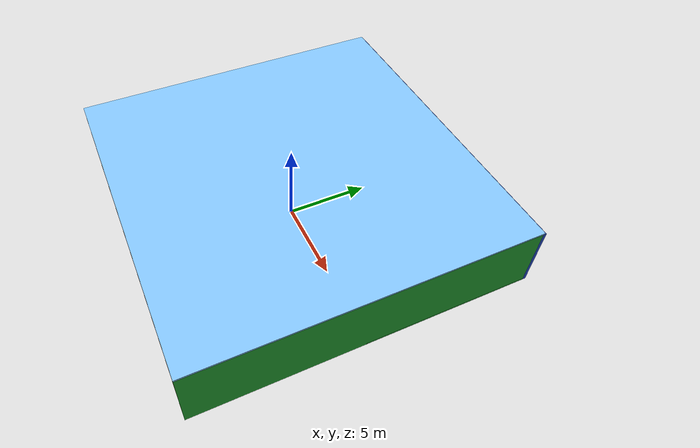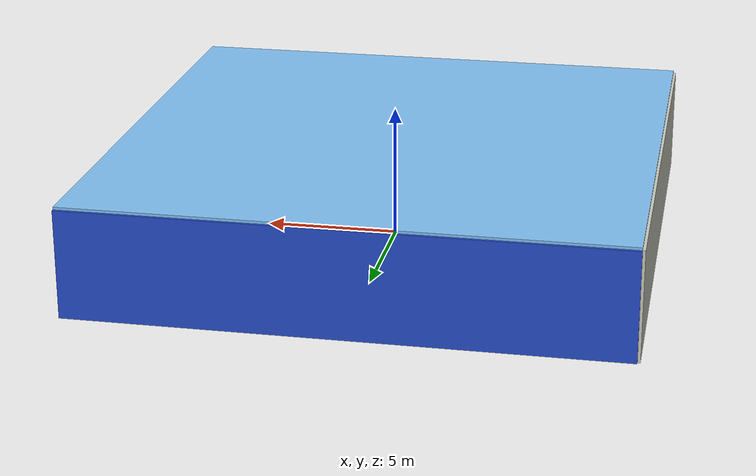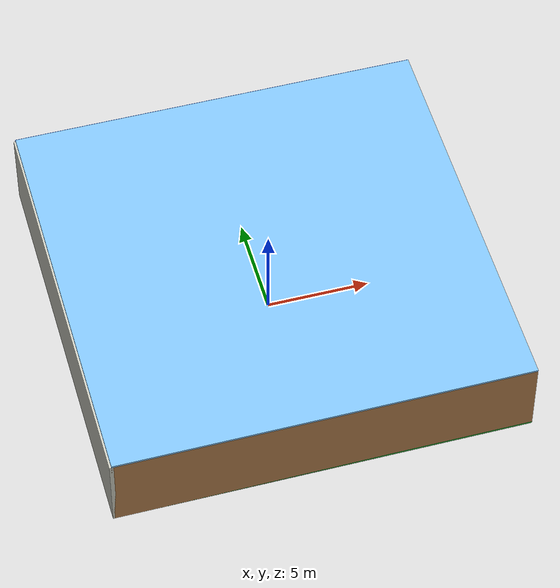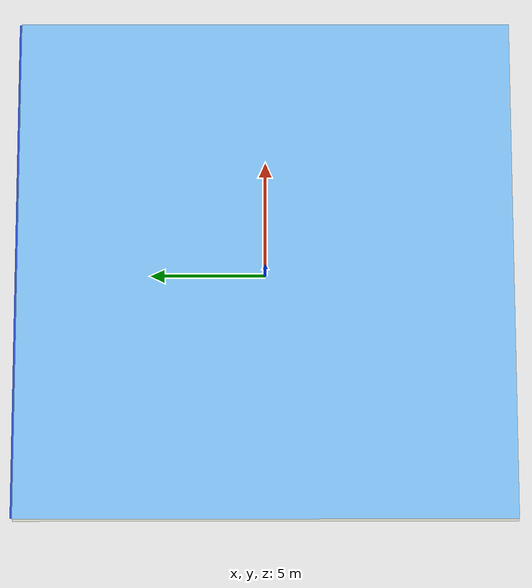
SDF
<sdf version="1.4">
 <world name="default">
  <physics type="ode">
   <max_step_size>0.001</max_step_size>
   <real_time_factor>1</real_time_factor>
   <real_time_update_rate>1000</real_time_update_rate>
   <gravity>0 0 -9.8</gravity>
  </physics>
  <scene><ambient>0.4 0.4 0.4 1</ambient><background>0.7 0.7 0.7 1</background><shadows>1</shadows></scene>
  <model name="Surrounding">
   <static>1</static>
   <link name="Ceiling">
    <collision name="Ceiling_Collision"><geometry><box><size>20 20 0.1</size></box></geometry></collision>
    <visual name="Ceiling_Visual">
     <geometry><box><size>20 20 0.1</size></box></geometry>
     <material>
      <script><uri>file://media/materials/scripts/gazebo.material</uri><name>Gazebo/SkyBlue</name></script>
     </material>
    </visual>
    <pose>0 0 4.05 0 0 0</pose>
   </link>
   <link name="Wall_South">
    <collision name="Wall_South_Collision">
     <geometry><box><size>20 0 4</size></box></geometry>
     <pose>0 0 2 0 -0 0</pose>
    </collision>
    <visual name="Wall_South_Visual">
     <pose>0 0 2 0 -0 0</pose>
     <geometry><box><size>20 0 4</size></box></geometry>
     <material>
      <script><uri>file://media/materials/scripts/gazebo.material</uri><name>Gazebo/Wood</name></script>
     </material>
    </visual>
    <velocity_decay><linear>0</linear><angular>0</angular></velocity_decay>
    <pose>0 -10 0 0 -0 0</pose>
   </link>
   <link name="Wall_East">
    <collision name="Wall_21_Collision">
     <geometry><box><size>20 0 4</size></box></geometry>
     <pose>0 0 2 0 -0 0</pose>
    </collision>
    <visual name="Wall_21_Visual">
     <pose>0 0 2 0 -0 0</pose>
     <geometry><box><size>20 0 4</size></box></geometry>
     <material>
      <script><uri>file://media/materials/scripts/gazebo.material</uri><name>Gazebo/GreenGlow</name></script>
     </material>
    </visual>
    <velocity_decay><linear>0</linear><angular>0</angular></velocity_decay>
    <pose>10 0 0 0 -0 1.5708</pose>
   </link>
   <link name="Wall_North">
    <collision name="Wall_22_Collision">
     <geometry><box><size>20 0.2 4</size></box></geometry>
     <pose>0 0 2 0 -0 0</pose>
    </collision>
    <visual name="Wall_22_Visual">
     <pose>0 0 2 0 -0 0</pose>
     <geometry><box><size>20 0.2 4</size></box></geometry>
     <material>
      <script><uri>file://media/materials/scripts/gazebo.material</uri><name>Gazebo/Blue</name></script>
     </material>
    </visual>
    <velocity_decay><linear>0</linear><angular>0</angular></velocity_decay>
    <pose>0 10 0 0 -0 0</pose>
   </link>
   <link name="Wall_West">
    <collision name="Wall_23_Collision">
     <geometry><box><size>20 0.2 4</size></box></geometry>
     <pose>0 0 2 0 -0 0</pose>
    </collision>
    <visual name="Wall_23_Visual">
     <pose>0 0 2 0 -0 0</pose>
     <geometry><box><size>20 0.2 4</size></box></geometry>
     <material>
      <script><uri>file://media/materials/scripts/gazebo.material</uri><name>Gazebo/PaintedWall</name></script>
     </material>
    </visual>
    <velocity_decay><linear>0</linear><angular>0</angular></velocity_decay>
    <pose>-10 0 0 0 0 -1.5708</pose>
   </link>
   <link name="Ground_link">
    <collision name="collision">
     <pose>0 0 .05 0 -0 0</pose>
     <geometry><box><size>20 20 0.1</size></box></geometry>
    </collision>
    <visual name="visual">
     <pose>0 0 .05 0 -0 0</pose>
     <geometry><box><size>20 20 0.1</size></box></geometry>
     <material>
      <script><uri>file://media/materials/scripts/gazebo.material</uri><name>Gazebo/Green</name></script>
     </material>
    </visual>
   </link>
   <static>1</static>
  </model>
  <spherical_coordinates>
   <surface_model>EARTH_WGS84</surface_model>
   <latitude_deg>0</latitude_deg>
   <longitude_deg>0</longitude_deg>
   <elevation>0</elevation>
   <heading_deg>0</heading_deg>
  </spherical_coordinates>
  <light name="lightball_0" type="diffuse">
   <diffuse>0.8 0.8 0.8 1</diffuse>
   <specular>0.2 0.2 0.2 1</specular>
   <attenuation>
    <range>100</range>
    <constant>0.7</constant>
    <linear>0.01</linear>
    <quadratic>0.001</quadratic>
   </attenuation>
   <direction>-0.5 0.1 -0.9</direction>
   <pose>-8.20763997829 -2.43058972028 3.53033763516 0 0 0</pose>
  </light>
  <light name="lightball_1" type="diffuse">
   <diffuse>0.8 0.8 0.8 1</diffuse>
   <specular>0.2 0.2 0.2 1</specular>
   <attenuation>
    <range>100</range>
    <constant>0.7</constant>
    <linear>0.01</linear>
    <quadratic>0.001</quadratic>
   </attenuation>
   <direction>-0.5 0.1 -0.9</direction>
   <pose>-4.69345925558 -5.28082818502 0.504346189679 0 0 0</pose>
  </light>
  <light name="lightball_2" type="diffuse">
   <diffuse>0.8 0.8 0.8 1</diffuse>
   <specular>0.2 0.2 0.2 1</specular>
   <attenuation>
    <range>100</range>
    <constant>0.7</constant>
    <linear>0.01</linear>
    <quadratic>0.001</quadratic>
   </attenuation>
   <direction>-0.5 0.1 -0.9</direction>
   <pose>4.71817126207 -6.00673265536 1.21928056579 0 0 0</pose>
  </light>
  <light name="lightball_3" type="diffuse">
   <diffuse>0.8 0.8 0.8 1</diffuse>
   <specular>0.2 0.2 0.2 1</specular>
   <attenuation>
    <range>100</range>
    <constant>0.7</constant>
    <linear>0.01</linear>
    <quadratic>0.001</quadratic>
   </attenuation>
   <direction>-0.5 0.1 -0.9</direction>
   <pose>2.73476622727 4.04196318376 1.64110421442 0 0 0</pose>
  </light>
  <light name="lightball_4" type="diffuse">
   <diffuse>0.8 0.8 0.8 1</diffuse>
   <specular>0.2 0.2 0.2 1</specular>
   <attenuation>
    <range>100</range>
    <constant>0.7</constant>
    <linear>0.01</linear>
    <quadratic>0.001</quadratic>
   </attenuation>
   <direction>-0.5 0.1 -0.9</direction>
   <pose>2.37171171102 4.90134501234 3.44252593992 0 0 0</pose>
  </light>
  <light name="lightball_5" type="diffuse">
   <diffuse>0.8 0.8 0.8 1</diffuse>
   <specular>0.2 0.2 0.2 1</specular>
   <attenuation>
    <range>100</range>
    <constant>0.7</constant>
    <linear>0.01</linear>
    <quadratic>0.001</quadratic>
   </attenuation>
   <direction>-0.5 0.1 -0.9</direction>
   <pose>9.43982652491 -0.66613702393 2.10991102559 0 0 0</pose>
  </light>
  <light name="lightball_6" type="diffuse">
   <diffuse>0.8 0.8 0.8 1</diffuse>
   <specular>0.2 0.2 0.2 1</specular>
   <attenuation>
    <range>100</range>
    <constant>0.7</constant>
    <linear>0.01</linear>
    <quadratic>0.001</quadratic>
   </attenuation>
   <direction>-0.5 0.1 -0.9</direction>
   <pose>-0.320043874473 7.67455226075 3.41289278946 0 0 0</pose>
  </light>
  <light name="lightball_7" type="diffuse">
   <diffuse>0.8 0.8 0.8 1</diffuse>
   <specular>0.2 0.2 0.2 1</specular>
   <attenuation>
    <range>100</range>
    <constant>0.7</constant>
    <linear>0.01</linear>
    <quadratic>0.001</quadratic>
   </attenuation>
   <direction>-0.5 0.1 -0.9</direction>
   <pose>7.31079319181 -5.94975960996 0.574646739945 0 0 0</pose>
  </light>
  <light name="lightball_8" type="diffuse">
   <diffuse>0.8 0.8 0.8 1</diffuse>
   <specular>0.2 0.2 0.2 1</specular>
   <attenuation>
    <range>100</range>
    <constant>0.7</constant>
    <linear>0.01</linear>
    <quadratic>0.001</quadratic>
   </attenuation>
   <direction>-0.5 0.1 -0.9</direction>
   <pose>-0.771940263104 -0.0519027047404 0.701800095605 0 0 0</pose>
  </light>
  <include><uri>model://table</uri><pose>-7.55609173021 2.1781360928 0 0 0 1.83930461336</pose></include>
  <include>
   <uri>model://textured_shapes</uri>
   <pose>-7.13136709296 4.65182723069 0 0 0 2.64858610201</pose>
  </include>
  <include><uri>model://cabinet</uri><pose>-1.74030560327 -4.56473583514 0 0 0 1.95961274445</pose></include>
  <include>
   <uri>model://robocup_3Dsim_goal</uri>
   <pose>0.833539511138 7.01026625817 0 0 0 0.303312784712</pose>
  </include>
  <include>
   <uri>model://robocup_3Dsim_goal</uri>
   <pose>7.82776703385 -6.81600654181 0 0 0 0.961124726052</pose>
  </include>
  <include><uri>model://cabinet</uri><pose>7.30893242083 1.62999928327 0 0 0 1.42397852966</pose></include>
 </world>
</sdf>

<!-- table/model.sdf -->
<sdf version="1.5">
  <model name="table">
    <static>true</static>
    <link name="link">
      <collision name="surface">
        <pose>0 0 1.0 0 0 0</pose>
        <geometry>
          <box>
            <size>1.5 0.8 0.03</size>
          </box>
        </geometry>
        <surface>
          <friction>
            <ode>
              <mu>0.6</mu>
              <mu2>0.6</mu2>
            </ode>
          </friction>
        </surface>
      </collision>
      <visual name="visual1">
        <pose>0 0 1.0 0 0 0</pose>
        <geometry>
          <box>
            <size>1.5 0.8 0.03</size>
          </box>
        </geometry>
        <material>
          <script>
            <uri>model://media/materials/scripts/gazebo.material</uri>
            <name>Gazebo/Wood</name>
          </script>
        </material>
      </visual>
      <collision name="front_left_leg">
        <pose>0.68 0.38 0.5 0 0 0</pose>
        <geometry>
          <cylinder>
            <radius>0.02</radius>
            <length>1.0</length>
          </cylinder>
        </geometry>
      </collision>
      <visual name="front_left_leg">
        <pose>0.68 0.38 0.5 0 0 0</pose>
        <geometry>
          <cylinder>
            <radius>0.02</radius>
            <length>1.0</length>
          </cylinder>
        </geometry>
        <material>
          <script>
            <uri>model://media/materials/scripts/gazebo.material</uri>
            <name>Gazebo/Grey</name>
          </script>
        </material>
      </visual>
      <collision name="front_right_leg">
        <pose>0.68 -0.38 0.5 0 0 0</pose>
        <geometry>
          <cylinder>
            <radius>0.02</radius>
            <length>1.0</length>
          </cylinder>
        </geometry>
      </collision>
      <visual name="front_right_leg">
        <pose>0.68 -0.38 0.5 0 0 0</pose>
        <geometry>
          <cylinder>
            <radius>0.02</radius>
            <length>1.0</length>
          </cylinder>
        </geometry>
        <material>
          <script>
            <uri>model://media/materials/scripts/gazebo.material</uri>
            <name>Gazebo/Grey</name>
          </script>
        </material>
      </visual>
      <collision name="back_right_leg">
        <pose>-0.68 -0.38 0.5 0 0 0</pose>
        <geometry>
          <cylinder>
            <radius>0.02</radius>
            <length>1.0</length>
          </cylinder>
        </geometry>
      </collision>
      <visual name="back_right_leg">
        <pose>-0.68 -0.38 0.5 0 0 0</pose>
        <geometry>
          <cylinder>
            <radius>0.02</radius>
            <length>1.0</length>
          </cylinder>
        </geometry>
        <material>
          <script>
            <uri>model://media/materials/scripts/gazebo.material</uri>
            <name>Gazebo/Grey</name>
          </script>
        </material>
      </visual>
      <collision name="back_left_leg">
        <pose>-0.68 0.38 0.5 0 0 0</pose>
        <geometry>
          <cylinder>
            <radius>0.02</radius>
            <length>1.0</length>
          </cylinder>
        </geometry>
      </collision>
      <visual name="back_left_leg">
        <pose>-0.68 0.38 0.5 0 0 0</pose>
        <geometry>
          <cylinder>
            <radius>0.02</radius>
            <length>1.0</length>
          </cylinder>
        </geometry>
        <material>
          <script>
            <uri>model://media/materials/scripts/gazebo.material</uri>
            <name>Gazebo/Grey</name>
          </script>
        </material>
      </visual>
    </link>
  </model>
</sdf>

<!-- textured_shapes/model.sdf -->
<sdf version="1.6">
  <model name="textured_shapes">
    <pose>0 0 0.5 0 0 0</pose>
    <link name="box">
      <pose>0 -1.5 0 0 0 0</pose>
      <collision name="collision">
        <geometry>
          <box>
            <size>1 1 1</size>
          </box>
        </geometry>
      </collision>
      <visual name="visual">
        <geometry>
          <box>
            <size>1 1 1</size>
          </box>
        </geometry>
        <material>
          <script>
            <uri>model://../model_source/models/textured_shapes/materials/scripts</uri>
            <uri>model://../model_source/models/textured_shapes/materials/textures</uri>
            <name>TexturedShape/Squares</name>
          </script>
        </material>
      </visual>
    </link>
    <link name="sphere">
      <collision name="collision">
        <geometry>
          <sphere>
            <radius>0.5</radius>
          </sphere>
        </geometry>
      </collision>
      <visual name="visual">
        <geometry>
          <sphere>
            <radius>0.5</radius>
          </sphere>
        </geometry>
        <material>
          <script>
            <uri>model://../model_source/models/textured_shapes/materials/scripts</uri>
            <uri>model://../model_source/models/textured_shapes/materials/textures</uri>
            <name>TexturedShape/Squares</name>
          </script>
        </material>
      </visual>
    </link>
    <link name="cylinder">
      <pose>0 1.5 0 0 0 0</pose>
      <collision name="collision">
        <geometry>
          <cylinder>
            <radius>0.5</radius>
            <length>1</length>
          </cylinder>
        </geometry>
      </collision>
      <visual name="visual">
        <geometry>
          <cylinder>
            <radius>0.5</radius>
            <length>1</length>
          </cylinder>
        </geometry>
        <material>
          <script>
            <uri>model://../model_source/models/textured_shapes/materials/scripts</uri>
            <uri>model://../model_source/models/textured_shapes/materials/textures</uri>
            <name>TexturedShape/Squares</name>
          </script>
        </material>
      </visual>
    </link>
  </model>
</sdf>

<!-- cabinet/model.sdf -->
<sdf version="1.5">
  <model name="cabinet">
    <static>true</static>
    <link name="cabinet_bottom_plate">
      <inertial>
        <pose>0 0 -1 0 0 0</pose>
        <inertia>
          <ixx>2.050000</ixx>
          <ixy>0</ixy>
          <ixz>0</ixz>
          <iyy>2.050000</iyy>
          <iyz>0</iyz>
          <izz>2.050000</izz>
        </inertia>
        <mass>25.000000</mass>
      </inertial>
      <collision name="cabinet_bottom_plate_geom">
        <pose>0 0 0.010000 0 0 0</pose>
        <geometry>
          <box>
            <size>0.450000 0.450000 0.020000</size>
          </box>
        </geometry>
      </collision>
      <visual name="cabinet_bottom_plate_geom_visual">
        <pose>0 0 0.010000 0 0 0</pose>
        <geometry>
          <box>
            <size>0.450000 0.450000 0.020000</size>
          </box>
        </geometry>
        <material>
          <script>
            <uri>model://media/materials/scripts/gazebo.material</uri>
            <name>Gazebo/Wood</name>
          </script>
        </material>
      </visual>
      <collision name="cabinet_bottom_plate_geom_cabinet_back_plate">
        <pose>0.235000 0 0.510000 0 0 0</pose>
        <geometry>
          <box>
            <size>0.020000 0.450000 1.020000</size>
          </box>
        </geometry>
      </collision>
      <visual name="cabinet_bottom_plate_geom_cabinet_back_plate_visual">
        <pose>0.235000 0 0.510000 0 0 0</pose>
        <geometry>
          <box>
            <size>0.020000 0.450000 1.020000</size>
          </box>
        </geometry>
        <material>
          <script>
            <uri>model://media/materials/scripts/gazebo.material</uri>
            <name>Gazebo/Wood</name>
          </script>
        </material>
      </visual>
      <collision name="cabinet_bottom_plate_geom_cabinet_left_plate">
        <pose>0 0.235000 0.510000 0 0 0</pose>
        <geometry>
          <box>
            <size>0.450000 0.020000 1.020000</size>
          </box>
        </geometry>
      </collision>
      <visual name="cabinet_bottom_plate_geom_cabinet_left_plate_visual">
        <pose>0 0.235000 0.510000 0 0 0</pose>
        <geometry>
          <box>
            <size>0.450000 0.020000 1.020000</size>
          </box>
        </geometry>
        <material>
          <script>
            <uri>model://media/materials/scripts/gazebo.material</uri>
            <name>Gazebo/Wood</name>
          </script>
        </material>
      </visual>
      <collision name="cabinet_bottom_plate_geom_cabinet_middle_plate">
        <pose>0 0 0.510000 0 0 0</pose>
        <geometry>
          <box>
            <size>0.450000 0.450000 0.020000</size>
          </box>
        </geometry>
      </collision>
      <visual name="cabinet_bottom_plate_geom_cabinet_middle_plate_visual">
        <pose>0 0 0.510000 0 0 0</pose>
        <geometry>
          <box>
            <size>0.450000 0.450000 0.020000</size>
          </box>
        </geometry>
        <material>
          <script>
            <uri>model://media/materials/scripts/gazebo.material</uri>
            <name>Gazebo/Wood</name>
          </script>
        </material>
      </visual>
      <collision name="cabinet_bottom_plate_geom_cabinet_right_plate">
        <pose>0 -0.235000 0.510000 0 0 0</pose>
        <geometry>
          <box>
            <size>0.450000 0.020000 1.020000</size>
          </box>
        </geometry>
      </collision>
      <visual name="cabinet_bottom_plate_geom_cabinet_right_plate_visual">
        <pose>0 -0.235000 0.510000 0 0 0</pose>
        <geometry>
          <box>
            <size>0.450000 0.020000 1.020000</size>
          </box>
        </geometry>
        <material>
          <script>
            <uri>model://media/materials/scripts/gazebo.material</uri>
            <name>Gazebo/Wood</name>
          </script>
        </material>
      </visual>
      <collision name="cabinet_bottom_plate_geom_cabinet_top_plate">
        <pose>0 0 1.010000 0 0 0</pose>
        <geometry>
          <box>
            <size>0.450000 0.450000 0.020000</size>
          </box>
        </geometry>
      </collision>
      <visual name="cabinet_bottom_plate_geom_cabinet_top_plate_visual">
        <pose>0 0 1.010000 0 0 0</pose>
        <geometry>
          <box>
            <size>0.450000 0.450000 0.020000</size>
          </box>
        </geometry>
        <material>
          <script>
            <uri>model://media/materials/scripts/gazebo.material</uri>
            <name>Gazebo/Wood</name>
          </script>
        </material>
      </visual>
    </link>
  </model>
</sdf>

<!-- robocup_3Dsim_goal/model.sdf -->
<sdf version="1.5">
  <model name="robocup_3d_goal">
    <static>true</static>
    <link name="left_post">
      <pose>0 1.05 0.45 0 0 0</pose>
      <collision name="collision">
        <geometry>
          <cylinder>
            <radius>0.05</radius>
            <length>0.9</length>
          </cylinder>
        </geometry>
      </collision>
      <visual name="visual">
        <geometry>
          <cylinder>
            <radius>0.05</radius>
            <length>0.9</length>
          </cylinder>
        </geometry>
        <material>
          <script>
            <uri>file://media/materials/scripts/gazebo.material</uri>
            <name>Gazebo/ZincYellow</name>
          </script>
        </material>
      </visual>
    </link>
    <link name="left_support_horiz_lower">
      <pose>0.30 1.05 0.01 0 0 0</pose>
      <collision name="collision">
        <geometry>
          <box>
            <size>0.50 0.02 0.02</size>
          </box>
        </geometry>
      </collision>
      <visual name="visual">
        <geometry>
          <box>
            <size>0.50 0.02 0.02</size>
          </box>
        </geometry>
        <material>
          <script>
            <uri>file://media/materials/scripts/gazebo.material</uri>
            <name>Gazebo/White</name>
          </script>
        </material>
      </visual>
    </link>
    <link name="left_support_horiz_upper">
      <pose>0.30 1.05 0.79 0 0 0</pose>
      <collision name="collision">
        <geometry>
          <box>
            <size>0.50 0.02 0.02</size>
          </box>
        </geometry>
      </collision>
      <visual name="visual">
        <geometry>
          <box>
            <size>0.50 0.02 0.02</size>
          </box>
        </geometry>
        <material>
          <script>
            <uri>file://media/materials/scripts/gazebo.material</uri>
            <name>Gazebo/White</name>
          </script>
        </material>
      </visual>
    </link>
    <link name="left_support_vertical">
      <pose>0.56 1.05 0.4 0 1.5708 0</pose>
      <collision name="collision">
        <geometry>
          <box>
            <size>0.80 0.02 0.02</size>
          </box>
        </geometry>
      </collision>
      <visual name="visual">
        <geometry>
          <box>
            <size>0.80 0.02 0.02</size>
          </box>
        </geometry>
        <material>
          <script>
            <uri>file://media/materials/scripts/gazebo.material</uri>
            <name>Gazebo/White</name>
          </script>
        </material>
      </visual>
    </link>
    <link name="right_support_horiz_lower">
      <pose>0.30 -1.05 0.01 0 0 0</pose>
      <collision name="collision">
        <geometry>
          <box>
            <size>0.50 0.02 0.02</size>
          </box>
        </geometry>
      </collision>
      <visual name="visual">
        <geometry>
          <box>
            <size>0.50 0.02 0.02</size>
          </box>
        </geometry>
        <material>
          <script>
            <uri>file://media/materials/scripts/gazebo.material</uri>
            <name>Gazebo/White</name>
          </script>
        </material>
      </visual>
    </link>
    <link name="right_support_horiz_upper">
      <pose>0.30 -1.05 0.79 0 0 0</pose>
      <collision name="collision">
        <geometry>
          <box>
            <size>0.50 0.02 0.02</size>
          </box>
        </geometry>
      </collision>
      <visual name="visual">
        <geometry>
          <box>
            <size>0.50 0.02 0.02</size>
          </box>
        </geometry>
        <material>
          <script>
            <uri>file://media/materials/scripts/gazebo.material</uri>
            <name>Gazebo/White</name>
          </script>
        </material>
      </visual>
    </link>
    <link name="right_support_vertical">
      <pose>0.56 -1.05 0.4 0 1.5708 0</pose>
      <collision name="collision">
        <geometry>
          <box>
            <size>0.80 0.02 0.02</size>
          </box>
        </geometry>
      </collision>
      <visual name="visual">
        <geometry>
          <box>
            <size>0.80 0.02 0.02</size>
          </box>
        </geometry>
        <material>
          <script>
            <uri>file://media/materials/scripts/gazebo.material</uri>
            <name>Gazebo/White</name>
          </script>
        </material>
      </visual>
    </link>
    <link name="center_support_horiz_lower">
      <pose>0.56 0 0.01 0 1.5708 0</pose>
      <collision name="collision">
        <geometry>
          <box>
            <size>0.02 2.08 0.02</size>
          </box>
        </geometry>
      </collision>
      <visual name="visual">
        <geometry>
          <box>
            <size>0.02 2.08 0.02</size>
          </box>
        </geometry>
        <material>
          <script>
            <uri>file://media/materials/scripts/gazebo.material</uri>
            <name>Gazebo/White</name>
          </script>
        </material>
      </visual>
    </link>
    <link name="center_support_horiz_upper">
      <pose>0.56 0 0.79 0 1.5708 0</pose>
      <collision name="collision">
        <geometry>
          <box>
            <size>0.02 2.08 0.02</size>
          </box>
        </geometry>
      </collision>
      <visual name="visual">
        <geometry>
          <box>
            <size>0.02 2.08 0.02</size>
          </box>
        </geometry>
        <material>
          <script>
            <uri>file://media/materials/scripts/gazebo.material</uri>
            <name>Gazebo/White</name>
          </script>
        </material>
      </visual>
    </link>
    <link name="right_post">
      <pose>0 -1.05 0.45 0 0 0</pose>
      <collision name="collision">
        <geometry>
          <cylinder>
            <radius>0.05</radius>
            <length>0.9</length>
          </cylinder>
        </geometry>
      </collision>
      <visual name="visual">
        <geometry>
          <cylinder>
            <radius>0.05</radius>
            <length>0.9</length>
          </cylinder>
        </geometry>
        <material>
          <script>
            <uri>file://media/materials/scripts/gazebo.material</uri>
            <name>Gazebo/ZincYellow</name>
          </script>
        </material>
      </visual>
    </link>
    <link name="crossbar">
      <pose>0 0 0.85 1.57 1.57 0</pose>
      <collision name="collision">
        <geometry>
          <cylinder>
            <radius>0.05</radius>
            <length>2.0</length>
          </cylinder>
        </geometry>
      </collision>
      <visual name="visual">
        <geometry>
          <cylinder>
            <radius>0.05</radius>
            <length>2.0</length>
          </cylinder>
        </geometry>
        <material>
          <script>
            <uri>file://media/materials/scripts/gazebo.material</uri>
            <name>Gazebo/ZincYellow</name>
          </script>
        </material>
      </visual>
    </link>
    <link name="center_net">
      <pose>0.56 0 0.40 0 0 0</pose>
      <collision name="collision">
        <geometry>
          <box>
            <size>0.01 2.1 0.80</size>
          </box>
        </geometry>
      </collision>
      <visual name="visual">
        <geometry>
          <box>
            <size>0.01 2.1 0.80</size>
          </box>
        </geometry>
        <material>
          <script>
            <uri>model://../model_source/models/robocup09_spl_field/materials/scripts/</uri>
            <uri>model://../model_source/models/robocup09_spl_field/materials/textures/</uri>
            <name>RoboCup/Net</name>
          </script>
        </material>
      </visual>
    </link>
    <link name="left_net">
      <pose>0.30 1.05 0.40 0 0 0</pose>
      <collision name="collision">
        <geometry>
          <box>
            <size>0.50 0.01 0.76</size>
          </box>
        </geometry>
      </collision>
      <visual name="visual">
        <geometry>
          <box>
            <size>0.50 0.01 0.76</size>
          </box>
        </geometry>
        <material>
          <script>
            <uri>model://../model_source/models/robocup09_spl_field/materials/scripts/</uri>
            <uri>model://../model_source/models/robocup09_spl_field/materials/textures/</uri>
            <name>RoboCup/Net</name>
          </script>
        </material>
      </visual>
    </link>
    <link name="right_net">
      <pose>0.30 -1.05 0.40 0 0 0</pose>
      <collision name="collision">
        <geometry>
          <box>
            <size>0.50 0.01 0.76</size>
          </box>
        </geometry>
      </collision>
      <visual name="visual">
        <geometry>
          <box>
            <size>0.50 0.01 0.76</size>
          </box>
        </geometry>
        <material>
          <script>
            <uri>model://../model_source/models/robocup09_spl_field/materials/scripts/</uri>
            <uri>model://../model_source/models/robocup09_spl_field/materials/textures/</uri>
            <name>RoboCup/Net</name>
          </script>
        </material>
      </visual>
    </link>
  </model>
</sdf>
